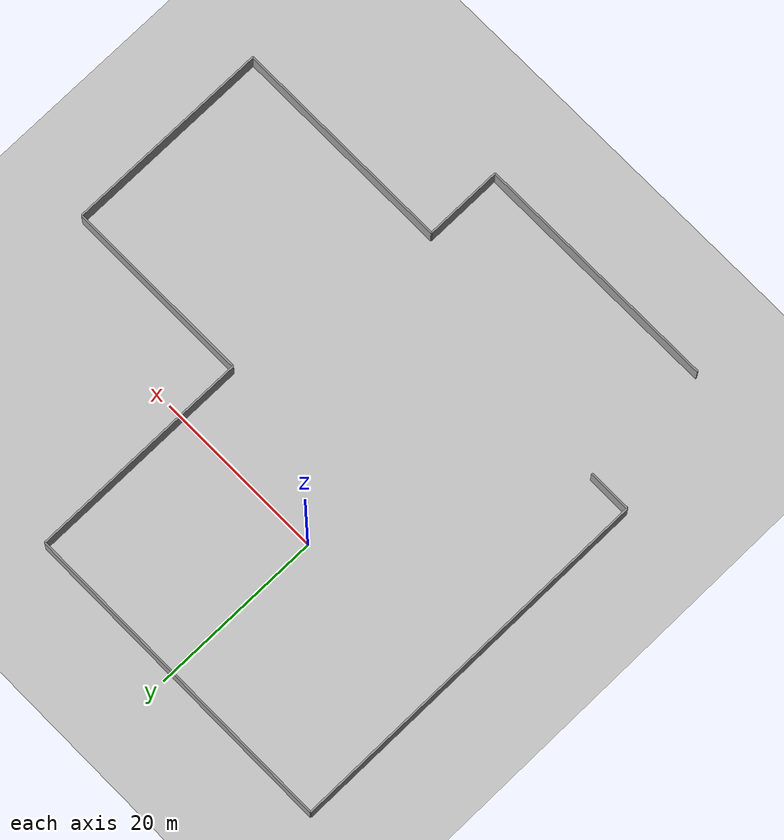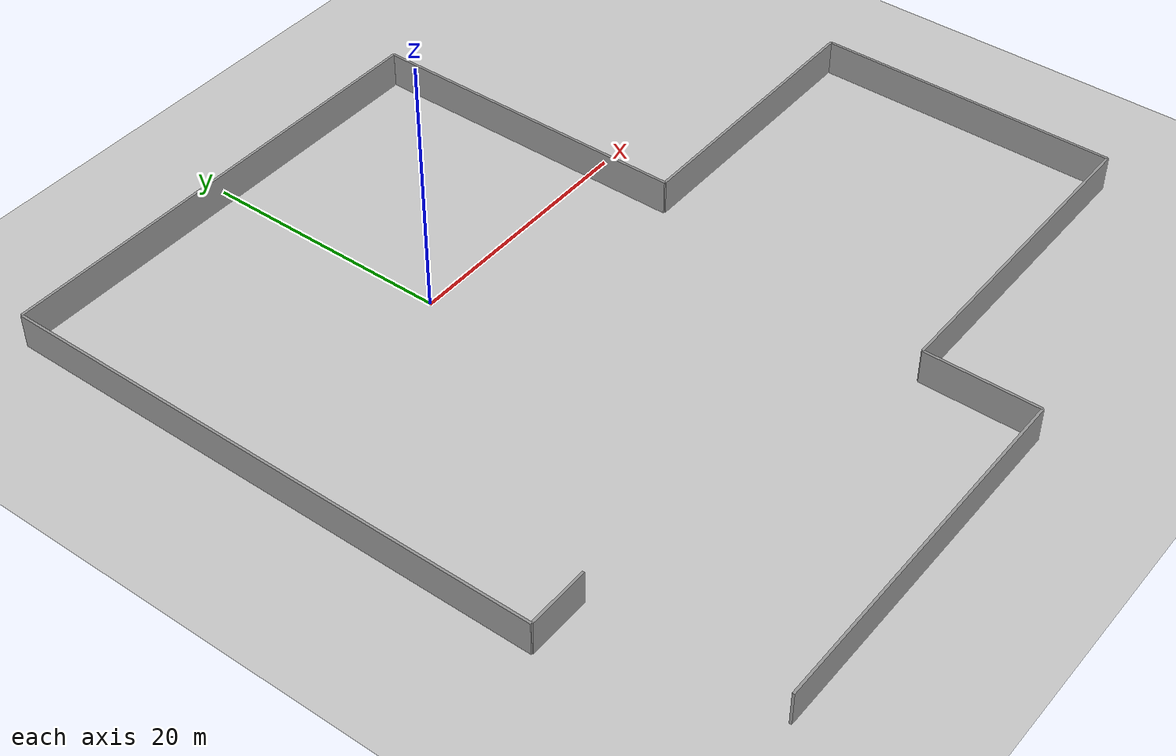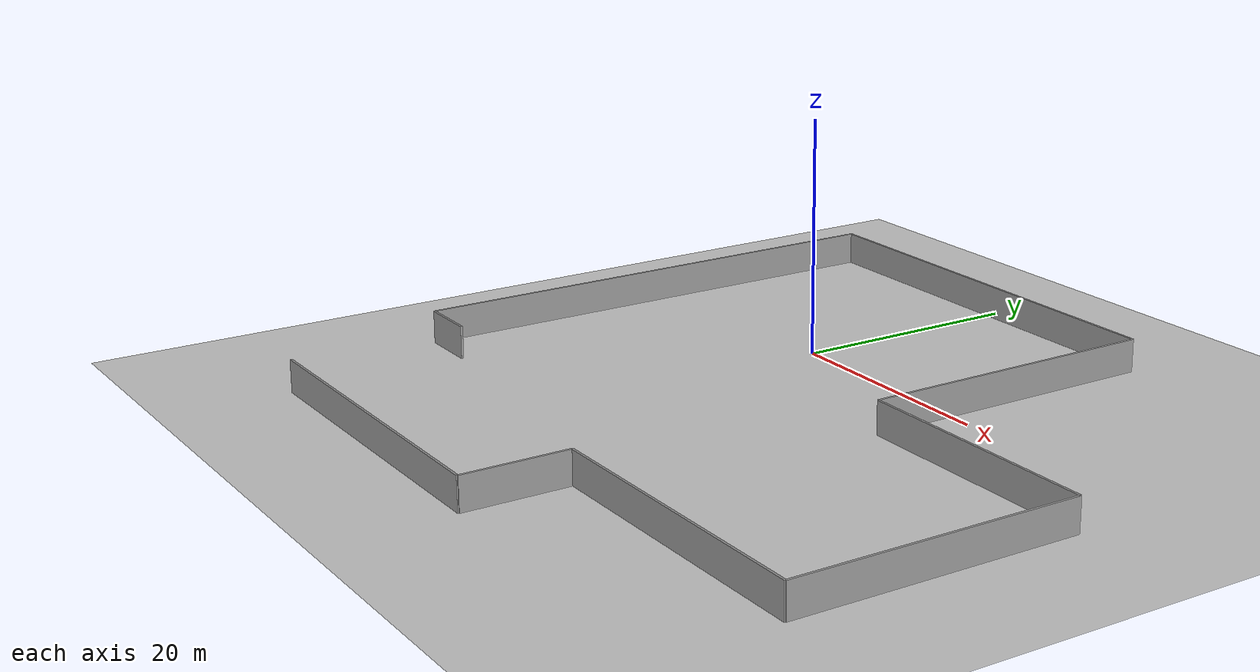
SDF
<sdf version="1.4">
 <world name="default">
  <include><uri>model://ground_plane</uri></include>
  <include><uri>model://sun</uri></include>
  <include><uri>model://orchard_wall</uri><name>wall1</name><pose>-1 19 0 0 0 0</pose></include>
  <include><uri>model://orchard_wall1</uri><name>wall2</name><pose>-20 -3 0 0 0 1.57</pose></include>
  <include><uri>model://orchard_wall3</uri><name>wall3</name><pose>-0.5 -40 0 0 0 0</pose></include>
  <include><uri>model://orchard_wall4</uri><name>wall4</name><pose>18 6 0 0 0 1.57</pose></include>
  <include><uri>model://orchard_wall5</uri><name>wall5</name><pose>29 -7 0 0 0 0</pose></include>
  <include><uri>model://orchard_wall6</uri><name>wall6</name><pose>40 -19 0 0 0 1.57</pose></include>
  <include><uri>model://orchard_wall7</uri><name>wall7</name><pose>27 -31 0 0 0 0</pose></include>
  <include><uri>model://orchard_wall8</uri><name>wall8</name><pose>14 -35.5 0 0 0 1.57</pose></include>
  <include><uri>model://orchard_wall10</uri><name>wall10</name><pose>-17.5 -25 0 0 0 0</pose></include>
 </world>
</sdf>

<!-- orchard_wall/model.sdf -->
<sdf version='1.6'>
  <model name='orchard_wall'>
    <link name='link'>
      <pose frame=''>0 0 1.4 0 -0 0</pose>
      <self_collide>0</self_collide>
      <enable_wind>0</enable_wind>
      <kinematic>0</kinematic>
      <gravity>1</gravity>
      <inertial>
        <mass>1</mass>
        <pose frame=''>0 0 0 0 -0 0</pose>
        <inertia>
          <ixx>1</ixx>
          <ixy>0</ixy>
          <ixz>0</ixz>
          <iyy>1</iyy>
          <iyz>0</iyz>
          <izz>1</izz>
        </inertia>
      </inertial>
      <visual name='visual'>
        <cast_shadows>0</cast_shadows>
        <geometry>
          <box>
            <size>38 0.2 2.8</size>
          </box>
        </geometry>
        <material>
          <script>
            <uri>model://grey_wall/materials/scripts</uri>
            <uri>model://grey_wall/materials/textures</uri>
            <name>vrc/grey_wall</name>
          </script>
          <shader type='pixel'>
            <normal_map>__default__</normal_map>
          </shader>
          <ambient>1 1 1 1</ambient>
          <diffuse>1 1 1 1</diffuse>
          <specular>0 0 0 1</specular>
          <emissive>0 0 0 1</emissive>
        </material>
        <pose frame=''>0 0 0 0 -0 0</pose>
        <transparency>0</transparency>
      </visual>
      <collision name='collision'>
        <laser_retro>0</laser_retro>
        <max_contacts>10</max_contacts>
        <pose frame=''>0 0 0 0 -0 0</pose>
        <geometry>
          <box>
            <size>38 0.2 2.8</size>
          </box>
        </geometry>
        <surface>
          <friction>
            <ode>
              <mu>1</mu>
              <mu2>1</mu2>
              <fdir1>0 0 0</fdir1>
              <slip1>0</slip1>
              <slip2>0</slip2>
            </ode>
            <torsional>
              <coefficient>1</coefficient>
              <patch_radius>0</patch_radius>
              <surface_radius>0</surface_radius>
              <use_patch_radius>1</use_patch_radius>
              <ode>
                <slip>0</slip>
              </ode>
            </torsional>
          </friction>
          <bounce>
            <restitution_coefficient>0</restitution_coefficient>
            <threshold>1e+06</threshold>
          </bounce>
          <contact>
            <collide_without_contact>0</collide_without_contact>
            <collide_without_contact_bitmask>1</collide_without_contact_bitmask>
            <collide_bitmask>1</collide_bitmask>
            <ode>
              <soft_cfm>0</soft_cfm>
              <soft_erp>0.2</soft_erp>
              <kp>1e+13</kp>
              <kd>1</kd>
              <max_vel>0.01</max_vel>
              <min_depth>0</min_depth>
            </ode>
            <bullet>
              <split_impulse>1</split_impulse>
              <split_impulse_penetration_threshold>-0.01</split_impulse_penetration_threshold>
              <soft_cfm>0</soft_cfm>
              <soft_erp>0.2</soft_erp>
              <kp>1e+13</kp>
              <kd>1</kd>
            </bullet>
          </contact>
        </surface>
      </collision>
    </link>
    <static>1</static>
    <allow_auto_disable>1</allow_auto_disable>
  </model>
</sdf>

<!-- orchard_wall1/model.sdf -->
<sdf version='1.6'>
  <model name='orchard_wall1'>
    <link name='link'>
      <pose frame=''>0 0 1.4 0 -0 0</pose>
      <self_collide>0</self_collide>
      <enable_wind>0</enable_wind>
      <kinematic>0</kinematic>
      <gravity>1</gravity>
      <inertial>
        <mass>1</mass>
        <pose frame=''>0 0 0 0 -0 0</pose>
        <inertia>
          <ixx>1</ixx>
          <ixy>0</ixy>
          <ixz>0</ixz>
          <iyy>1</iyy>
          <iyz>0</iyz>
          <izz>1</izz>
        </inertia>
      </inertial>
      <visual name='visual'>
        <cast_shadows>0</cast_shadows>
        <geometry>
          <box>
            <size>44 0.2 2.8</size>
          </box>
        </geometry>
        <material>
          <script>
            <uri>model://grey_wall/materials/scripts</uri>
            <uri>model://grey_wall/materials/textures</uri>
            <name>vrc/grey_wall</name>
          </script>
          <shader type='pixel'>
            <normal_map>__default__</normal_map>
          </shader>
          <ambient>1 1 1 1</ambient>
          <diffuse>1 1 1 1</diffuse>
          <specular>0 0 0 1</specular>
          <emissive>0 0 0 1</emissive>
        </material>
        <pose frame=''>0 0 0 0 -0 0</pose>
        <transparency>0</transparency>
      </visual>
      <collision name='collision'>
        <laser_retro>0</laser_retro>
        <max_contacts>10</max_contacts>
        <pose frame=''>0 0 0 0 -0 0</pose>
        <geometry>
          <box>
            <size>44 0.2 2.8</size>
          </box>
        </geometry>
        <surface>
          <friction>
            <ode>
              <mu>1</mu>
              <mu2>1</mu2>
              <fdir1>0 0 0</fdir1>
              <slip1>0</slip1>
              <slip2>0</slip2>
            </ode>
            <torsional>
              <coefficient>1</coefficient>
              <patch_radius>0</patch_radius>
              <surface_radius>0</surface_radius>
              <use_patch_radius>1</use_patch_radius>
              <ode>
                <slip>0</slip>
              </ode>
            </torsional>
          </friction>
          <bounce>
            <restitution_coefficient>0</restitution_coefficient>
            <threshold>1e+06</threshold>
          </bounce>
          <contact>
            <collide_without_contact>0</collide_without_contact>
            <collide_without_contact_bitmask>1</collide_without_contact_bitmask>
            <collide_bitmask>1</collide_bitmask>
            <ode>
              <soft_cfm>0</soft_cfm>
              <soft_erp>0.2</soft_erp>
              <kp>1e+13</kp>
              <kd>1</kd>
              <max_vel>0.01</max_vel>
              <min_depth>0</min_depth>
            </ode>
            <bullet>
              <split_impulse>1</split_impulse>
              <split_impulse_penetration_threshold>-0.01</split_impulse_penetration_threshold>
              <soft_cfm>0</soft_cfm>
              <soft_erp>0.2</soft_erp>
              <kp>1e+13</kp>
              <kd>1</kd>
            </bullet>
          </contact>
        </surface>
      </collision>
    </link>
    <static>1</static>
    <allow_auto_disable>1</allow_auto_disable>
  </model>
</sdf>

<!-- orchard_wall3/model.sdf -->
<sdf version='1.6'>
  <model name='orchard_wall3'>
    <link name='link'>
      <pose frame=''>0 0 1.4 0 -0 0</pose>
      <self_collide>0</self_collide>
      <enable_wind>0</enable_wind>
      <kinematic>0</kinematic>
      <gravity>1</gravity>
      <inertial>
        <mass>1</mass>
        <pose frame=''>0 0 0 0 -0 0</pose>
        <inertia>
          <ixx>1</ixx>
          <ixy>0</ixy>
          <ixz>0</ixz>
          <iyy>1</iyy>
          <iyz>0</iyz>
          <izz>1</izz>
        </inertia>
      </inertial>
      <visual name='visual'>
        <cast_shadows>0</cast_shadows>
        <geometry>
          <box>
            <size>29 0.2 2.8</size>
          </box>
        </geometry>
        <material>
          <script>
            <uri>model://grey_wall/materials/scripts</uri>
            <uri>model://grey_wall/materials/textures</uri>
            <name>vrc/grey_wall</name>
          </script>
          <shader type='pixel'>
            <normal_map>__default__</normal_map>
          </shader>
          <ambient>1 1 1 1</ambient>
          <diffuse>1 1 1 1</diffuse>
          <specular>0 0 0 1</specular>
          <emissive>0 0 0 1</emissive>
        </material>
        <pose frame=''>0 0 0 0 -0 0</pose>
        <transparency>0</transparency>
      </visual>
      <collision name='collision'>
        <laser_retro>0</laser_retro>
        <max_contacts>10</max_contacts>
        <pose frame=''>0 0 0 0 -0 0</pose>
        <geometry>
          <box>
            <size>29 0.2 2.8</size>
          </box>
        </geometry>
        <surface>
          <friction>
            <ode>
              <mu>1</mu>
              <mu2>1</mu2>
              <fdir1>0 0 0</fdir1>
              <slip1>0</slip1>
              <slip2>0</slip2>
            </ode>
            <torsional>
              <coefficient>1</coefficient>
              <patch_radius>0</patch_radius>
              <surface_radius>0</surface_radius>
              <use_patch_radius>1</use_patch_radius>
              <ode>
                <slip>0</slip>
              </ode>
            </torsional>
          </friction>
          <bounce>
            <restitution_coefficient>0</restitution_coefficient>
            <threshold>1e+06</threshold>
          </bounce>
          <contact>
            <collide_without_contact>0</collide_without_contact>
            <collide_without_contact_bitmask>1</collide_without_contact_bitmask>
            <collide_bitmask>1</collide_bitmask>
            <ode>
              <soft_cfm>0</soft_cfm>
              <soft_erp>0.2</soft_erp>
              <kp>1e+13</kp>
              <kd>1</kd>
              <max_vel>0.01</max_vel>
              <min_depth>0</min_depth>
            </ode>
            <bullet>
              <split_impulse>1</split_impulse>
              <split_impulse_penetration_threshold>-0.01</split_impulse_penetration_threshold>
              <soft_cfm>0</soft_cfm>
              <soft_erp>0.2</soft_erp>
              <kp>1e+13</kp>
              <kd>1</kd>
            </bullet>
          </contact>
        </surface>
      </collision>
    </link>
    <static>1</static>
    <allow_auto_disable>1</allow_auto_disable>
  </model>
</sdf>

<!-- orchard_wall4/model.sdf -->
<sdf version='1.6'>
  <model name='orchard_wall4'>
    <link name='link'>
      <pose frame=''>0 0 1.4 0 -0 0</pose>
      <self_collide>0</self_collide>
      <enable_wind>0</enable_wind>
      <kinematic>0</kinematic>
      <gravity>1</gravity>
      <inertial>
        <mass>1</mass>
        <pose frame=''>0 0 0 0 -0 0</pose>
        <inertia>
          <ixx>1</ixx>
          <ixy>0</ixy>
          <ixz>0</ixz>
          <iyy>1</iyy>
          <iyz>0</iyz>
          <izz>1</izz>
        </inertia>
      </inertial>
      <visual name='visual'>
        <cast_shadows>0</cast_shadows>
        <geometry>
          <box>
            <size>26 0.2 2.8</size>
          </box>
        </geometry>
        <material>
          <script>
            <uri>model://grey_wall/materials/scripts</uri>
            <uri>model://grey_wall/materials/textures</uri>
            <name>vrc/grey_wall</name>
          </script>
          <shader type='pixel'>
            <normal_map>__default__</normal_map>
          </shader>
          <ambient>1 1 1 1</ambient>
          <diffuse>1 1 1 1</diffuse>
          <specular>0 0 0 1</specular>
          <emissive>0 0 0 1</emissive>
        </material>
        <pose frame=''>0 0 0 0 -0 0</pose>
        <transparency>0</transparency>
      </visual>
      <collision name='collision'>
        <laser_retro>0</laser_retro>
        <max_contacts>10</max_contacts>
        <pose frame=''>0 0 0 0 -0 0</pose>
        <geometry>
          <box>
            <size>26 0.2 2.8</size>
          </box>
        </geometry>
        <surface>
          <friction>
            <ode>
              <mu>1</mu>
              <mu2>1</mu2>
              <fdir1>0 0 0</fdir1>
              <slip1>0</slip1>
              <slip2>0</slip2>
            </ode>
            <torsional>
              <coefficient>1</coefficient>
              <patch_radius>0</patch_radius>
              <surface_radius>0</surface_radius>
              <use_patch_radius>1</use_patch_radius>
              <ode>
                <slip>0</slip>
              </ode>
            </torsional>
          </friction>
          <bounce>
            <restitution_coefficient>0</restitution_coefficient>
            <threshold>1e+06</threshold>
          </bounce>
          <contact>
            <collide_without_contact>0</collide_without_contact>
            <collide_without_contact_bitmask>1</collide_without_contact_bitmask>
            <collide_bitmask>1</collide_bitmask>
            <ode>
              <soft_cfm>0</soft_cfm>
              <soft_erp>0.2</soft_erp>
              <kp>1e+13</kp>
              <kd>1</kd>
              <max_vel>0.01</max_vel>
              <min_depth>0</min_depth>
            </ode>
            <bullet>
              <split_impulse>1</split_impulse>
              <split_impulse_penetration_threshold>-0.01</split_impulse_penetration_threshold>
              <soft_cfm>0</soft_cfm>
              <soft_erp>0.2</soft_erp>
              <kp>1e+13</kp>
              <kd>1</kd>
            </bullet>
          </contact>
        </surface>
      </collision>
    </link>
    <static>1</static>
    <allow_auto_disable>1</allow_auto_disable>
  </model>
</sdf>

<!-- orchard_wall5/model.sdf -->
<sdf version='1.6'>
  <model name='orchard_wall5'>
    <link name='link'>
      <pose frame=''>0 0 1.4 0 -0 0</pose>
      <self_collide>0</self_collide>
      <enable_wind>0</enable_wind>
      <kinematic>0</kinematic>
      <gravity>1</gravity>
      <inertial>
        <mass>1</mass>
        <pose frame=''>0 0 0 0 -0 0</pose>
        <inertia>
          <ixx>1</ixx>
          <ixy>0</ixy>
          <ixz>0</ixz>
          <iyy>1</iyy>
          <iyz>0</iyz>
          <izz>1</izz>
        </inertia>
      </inertial>
      <visual name='visual'>
        <cast_shadows>0</cast_shadows>
        <geometry>
          <box>
            <size>22 0.2 2.8</size>
          </box>
        </geometry>
        <material>
          <script>
            <uri>model://grey_wall/materials/scripts</uri>
            <uri>model://grey_wall/materials/textures</uri>
            <name>vrc/grey_wall</name>
          </script>
          <shader type='pixel'>
            <normal_map>__default__</normal_map>
          </shader>
          <ambient>1 1 1 1</ambient>
          <diffuse>1 1 1 1</diffuse>
          <specular>0 0 0 1</specular>
          <emissive>0 0 0 1</emissive>
        </material>
        <pose frame=''>0 0 0 0 -0 0</pose>
        <transparency>0</transparency>
      </visual>
      <collision name='collision'>
        <laser_retro>0</laser_retro>
        <max_contacts>10</max_contacts>
        <pose frame=''>0 0 0 0 -0 0</pose>
        <geometry>
          <box>
            <size>22 0.2 2.8</size>
          </box>
        </geometry>
        <surface>
          <friction>
            <ode>
              <mu>1</mu>
              <mu2>1</mu2>
              <fdir1>0 0 0</fdir1>
              <slip1>0</slip1>
              <slip2>0</slip2>
            </ode>
            <torsional>
              <coefficient>1</coefficient>
              <patch_radius>0</patch_radius>
              <surface_radius>0</surface_radius>
              <use_patch_radius>1</use_patch_radius>
              <ode>
                <slip>0</slip>
              </ode>
            </torsional>
          </friction>
          <bounce>
            <restitution_coefficient>0</restitution_coefficient>
            <threshold>1e+06</threshold>
          </bounce>
          <contact>
            <collide_without_contact>0</collide_without_contact>
            <collide_without_contact_bitmask>1</collide_without_contact_bitmask>
            <collide_bitmask>1</collide_bitmask>
            <ode>
              <soft_cfm>0</soft_cfm>
              <soft_erp>0.2</soft_erp>
              <kp>1e+13</kp>
              <kd>1</kd>
              <max_vel>0.01</max_vel>
              <min_depth>0</min_depth>
            </ode>
            <bullet>
              <split_impulse>1</split_impulse>
              <split_impulse_penetration_threshold>-0.01</split_impulse_penetration_threshold>
              <soft_cfm>0</soft_cfm>
              <soft_erp>0.2</soft_erp>
              <kp>1e+13</kp>
              <kd>1</kd>
            </bullet>
          </contact>
        </surface>
      </collision>
    </link>
    <static>1</static>
    <allow_auto_disable>1</allow_auto_disable>
  </model>
</sdf>

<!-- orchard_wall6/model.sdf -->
<sdf version='1.6'>
  <model name='orchard_wall6'>
    <link name='link'>
      <pose frame=''>0 0 1.4 0 -0 0</pose>
      <self_collide>0</self_collide>
      <enable_wind>0</enable_wind>
      <kinematic>0</kinematic>
      <gravity>1</gravity>
      <inertial>
        <mass>1</mass>
        <pose frame=''>0 0 0 0 -0 0</pose>
        <inertia>
          <ixx>1</ixx>
          <ixy>0</ixy>
          <ixz>0</ixz>
          <iyy>1</iyy>
          <iyz>0</iyz>
          <izz>1</izz>
        </inertia>
      </inertial>
      <visual name='visual'>
        <cast_shadows>0</cast_shadows>
        <geometry>
          <box>
            <size>24 0.2 2.8</size>
          </box>
        </geometry>
        <material>
          <script>
            <uri>model://grey_wall/materials/scripts</uri>
            <uri>model://grey_wall/materials/textures</uri>
            <name>vrc/grey_wall</name>
          </script>
          <shader type='pixel'>
            <normal_map>__default__</normal_map>
          </shader>
          <ambient>1 1 1 1</ambient>
          <diffuse>1 1 1 1</diffuse>
          <specular>0 0 0 1</specular>
          <emissive>0 0 0 1</emissive>
        </material>
        <pose frame=''>0 0 0 0 -0 0</pose>
        <transparency>0</transparency>
      </visual>
      <collision name='collision'>
        <laser_retro>0</laser_retro>
        <max_contacts>10</max_contacts>
        <pose frame=''>0 0 0 0 -0 0</pose>
        <geometry>
          <box>
            <size>24 0.2 2.8</size>
          </box>
        </geometry>
        <surface>
          <friction>
            <ode>
              <mu>1</mu>
              <mu2>1</mu2>
              <fdir1>0 0 0</fdir1>
              <slip1>0</slip1>
              <slip2>0</slip2>
            </ode>
            <torsional>
              <coefficient>1</coefficient>
              <patch_radius>0</patch_radius>
              <surface_radius>0</surface_radius>
              <use_patch_radius>1</use_patch_radius>
              <ode>
                <slip>0</slip>
              </ode>
            </torsional>
          </friction>
          <bounce>
            <restitution_coefficient>0</restitution_coefficient>
            <threshold>1e+06</threshold>
          </bounce>
          <contact>
            <collide_without_contact>0</collide_without_contact>
            <collide_without_contact_bitmask>1</collide_without_contact_bitmask>
            <collide_bitmask>1</collide_bitmask>
            <ode>
              <soft_cfm>0</soft_cfm>
              <soft_erp>0.2</soft_erp>
              <kp>1e+13</kp>
              <kd>1</kd>
              <max_vel>0.01</max_vel>
              <min_depth>0</min_depth>
            </ode>
            <bullet>
              <split_impulse>1</split_impulse>
              <split_impulse_penetration_threshold>-0.01</split_impulse_penetration_threshold>
              <soft_cfm>0</soft_cfm>
              <soft_erp>0.2</soft_erp>
              <kp>1e+13</kp>
              <kd>1</kd>
            </bullet>
          </contact>
        </surface>
      </collision>
    </link>
    <static>1</static>
    <allow_auto_disable>1</allow_auto_disable>
  </model>
</sdf>

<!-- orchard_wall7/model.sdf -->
<sdf version='1.6'>
  <model name='orchard_wall7'>
    <link name='link'>
      <pose frame=''>0 0 1.4 0 -0 0</pose>
      <self_collide>0</self_collide>
      <enable_wind>0</enable_wind>
      <kinematic>0</kinematic>
      <gravity>1</gravity>
      <inertial>
        <mass>1</mass>
        <pose frame=''>0 0 0 0 -0 0</pose>
        <inertia>
          <ixx>1</ixx>
          <ixy>0</ixy>
          <ixz>0</ixz>
          <iyy>1</iyy>
          <iyz>0</iyz>
          <izz>1</izz>
        </inertia>
      </inertial>
      <visual name='visual'>
        <cast_shadows>0</cast_shadows>
        <geometry>
          <box>
            <size>26 0.2 2.8</size>
          </box>
        </geometry>
        <material>
          <script>
            <uri>model://grey_wall/materials/scripts</uri>
            <uri>model://grey_wall/materials/textures</uri>
            <name>vrc/grey_wall</name>
          </script>
          <shader type='pixel'>
            <normal_map>__default__</normal_map>
          </shader>
          <ambient>1 1 1 1</ambient>
          <diffuse>1 1 1 1</diffuse>
          <specular>0 0 0 1</specular>
          <emissive>0 0 0 1</emissive>
        </material>
        <pose frame=''>0 0 0 0 -0 0</pose>
        <transparency>0</transparency>
      </visual>
      <collision name='collision'>
        <laser_retro>0</laser_retro>
        <max_contacts>10</max_contacts>
        <pose frame=''>0 0 0 0 -0 0</pose>
        <geometry>
          <box>
            <size>26 0.2 2.8</size>
          </box>
        </geometry>
        <surface>
          <friction>
            <ode>
              <mu>1</mu>
              <mu2>1</mu2>
              <fdir1>0 0 0</fdir1>
              <slip1>0</slip1>
              <slip2>0</slip2>
            </ode>
            <torsional>
              <coefficient>1</coefficient>
              <patch_radius>0</patch_radius>
              <surface_radius>0</surface_radius>
              <use_patch_radius>1</use_patch_radius>
              <ode>
                <slip>0</slip>
              </ode>
            </torsional>
          </friction>
          <bounce>
            <restitution_coefficient>0</restitution_coefficient>
            <threshold>1e+06</threshold>
          </bounce>
          <contact>
            <collide_without_contact>0</collide_without_contact>
            <collide_without_contact_bitmask>1</collide_without_contact_bitmask>
            <collide_bitmask>1</collide_bitmask>
            <ode>
              <soft_cfm>0</soft_cfm>
              <soft_erp>0.2</soft_erp>
              <kp>1e+13</kp>
              <kd>1</kd>
              <max_vel>0.01</max_vel>
              <min_depth>0</min_depth>
            </ode>
            <bullet>
              <split_impulse>1</split_impulse>
              <split_impulse_penetration_threshold>-0.01</split_impulse_penetration_threshold>
              <soft_cfm>0</soft_cfm>
              <soft_erp>0.2</soft_erp>
              <kp>1e+13</kp>
              <kd>1</kd>
            </bullet>
          </contact>
        </surface>
      </collision>
    </link>
    <static>1</static>
    <allow_auto_disable>1</allow_auto_disable>
  </model>
</sdf>

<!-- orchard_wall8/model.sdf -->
<sdf version='1.6'>
  <model name='orchard_wall8'>
    <link name='link'>
      <pose frame=''>0 0 1.4 0 -0 0</pose>
      <self_collide>0</self_collide>
      <enable_wind>0</enable_wind>
      <kinematic>0</kinematic>
      <gravity>1</gravity>
      <inertial>
        <mass>1</mass>
        <pose frame=''>0 0 0 0 -0 0</pose>
        <inertia>
          <ixx>1</ixx>
          <ixy>0</ixy>
          <ixz>0</ixz>
          <iyy>1</iyy>
          <iyz>0</iyz>
          <izz>1</izz>
        </inertia>
      </inertial>
      <visual name='visual'>
        <cast_shadows>0</cast_shadows>
        <geometry>
          <box>
            <size>9 0.2 2.8</size>
          </box>
        </geometry>
        <material>
          <script>
            <uri>model://grey_wall/materials/scripts</uri>
            <uri>model://grey_wall/materials/textures</uri>
            <name>vrc/grey_wall</name>
          </script>
          <shader type='pixel'>
            <normal_map>__default__</normal_map>
          </shader>
          <ambient>1 1 1 1</ambient>
          <diffuse>1 1 1 1</diffuse>
          <specular>0 0 0 1</specular>
          <emissive>0 0 0 1</emissive>
        </material>
        <pose frame=''>0 0 0 0 -0 0</pose>
        <transparency>0</transparency>
      </visual>
      <collision name='collision'>
        <laser_retro>0</laser_retro>
        <max_contacts>10</max_contacts>
        <pose frame=''>0 0 0 0 -0 0</pose>
        <geometry>
          <box>
            <size>9 0.2 2.8</size>
          </box>
        </geometry>
        <surface>
          <friction>
            <ode>
              <mu>1</mu>
              <mu2>1</mu2>
              <fdir1>0 0 0</fdir1>
              <slip1>0</slip1>
              <slip2>0</slip2>
            </ode>
            <torsional>
              <coefficient>1</coefficient>
              <patch_radius>0</patch_radius>
              <surface_radius>0</surface_radius>
              <use_patch_radius>1</use_patch_radius>
              <ode>
                <slip>0</slip>
              </ode>
            </torsional>
          </friction>
          <bounce>
            <restitution_coefficient>0</restitution_coefficient>
            <threshold>1e+06</threshold>
          </bounce>
          <contact>
            <collide_without_contact>0</collide_without_contact>
            <collide_without_contact_bitmask>1</collide_without_contact_bitmask>
            <collide_bitmask>1</collide_bitmask>
            <ode>
              <soft_cfm>0</soft_cfm>
              <soft_erp>0.2</soft_erp>
              <kp>1e+13</kp>
              <kd>1</kd>
              <max_vel>0.01</max_vel>
              <min_depth>0</min_depth>
            </ode>
            <bullet>
              <split_impulse>1</split_impulse>
              <split_impulse_penetration_threshold>-0.01</split_impulse_penetration_threshold>
              <soft_cfm>0</soft_cfm>
              <soft_erp>0.2</soft_erp>
              <kp>1e+13</kp>
              <kd>1</kd>
            </bullet>
          </contact>
        </surface>
      </collision>
    </link>
    <static>1</static>
    <allow_auto_disable>1</allow_auto_disable>
  </model>
</sdf>

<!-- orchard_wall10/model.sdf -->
<sdf version='1.6'>
  <model name='orchard_wall10'>
    <link name='link'>
      <pose frame=''>0 0 1.4 0 -0 0</pose>
      <self_collide>0</self_collide>
      <enable_wind>0</enable_wind>
      <kinematic>0</kinematic>
      <gravity>1</gravity>
      <inertial>
        <mass>1</mass>
        <pose frame=''>0 0 0 0 -0 0</pose>
        <inertia>
          <ixx>1</ixx>
          <ixy>0</ixy>
          <ixz>0</ixz>
          <iyy>1</iyy>
          <iyz>0</iyz>
          <izz>1</izz>
        </inertia>
      </inertial>
      <visual name='visual'>
        <cast_shadows>0</cast_shadows>
        <geometry>
          <box>
            <size>5 0.2 2.8</size>
          </box>
        </geometry>
        <material>
          <script>
            <uri>model://grey_wall/materials/scripts</uri>
            <uri>model://grey_wall/materials/textures</uri>
            <name>vrc/grey_wall</name>
          </script>
          <shader type='pixel'>
            <normal_map>__default__</normal_map>
          </shader>
          <ambient>1 1 1 1</ambient>
          <diffuse>1 1 1 1</diffuse>
          <specular>0 0 0 1</specular>
          <emissive>0 0 0 1</emissive>
        </material>
        <pose frame=''>0 0 0 0 -0 0</pose>
        <transparency>0</transparency>
      </visual>
      <collision name='collision'>
        <laser_retro>0</laser_retro>
        <max_contacts>10</max_contacts>
        <pose frame=''>0 0 0 0 -0 0</pose>
        <geometry>
          <box>
            <size>5 0.2 2.8</size>
          </box>
        </geometry>
        <surface>
          <friction>
            <ode>
              <mu>1</mu>
              <mu2>1</mu2>
              <fdir1>0 0 0</fdir1>
              <slip1>0</slip1>
              <slip2>0</slip2>
            </ode>
            <torsional>
              <coefficient>1</coefficient>
              <patch_radius>0</patch_radius>
              <surface_radius>0</surface_radius>
              <use_patch_radius>1</use_patch_radius>
              <ode>
                <slip>0</slip>
              </ode>
            </torsional>
          </friction>
          <bounce>
            <restitution_coefficient>0</restitution_coefficient>
            <threshold>1e+06</threshold>
          </bounce>
          <contact>
            <collide_without_contact>0</collide_without_contact>
            <collide_without_contact_bitmask>1</collide_without_contact_bitmask>
            <collide_bitmask>1</collide_bitmask>
            <ode>
              <soft_cfm>0</soft_cfm>
              <soft_erp>0.2</soft_erp>
              <kp>1e+13</kp>
              <kd>1</kd>
              <max_vel>0.01</max_vel>
              <min_depth>0</min_depth>
            </ode>
            <bullet>
              <split_impulse>1</split_impulse>
              <split_impulse_penetration_threshold>-0.01</split_impulse_penetration_threshold>
              <soft_cfm>0</soft_cfm>
              <soft_erp>0.2</soft_erp>
              <kp>1e+13</kp>
              <kd>1</kd>
            </bullet>
          </contact>
        </surface>
      </collision>
    </link>
    <static>1</static>
    <allow_auto_disable>1</allow_auto_disable>
  </model>
</sdf>
